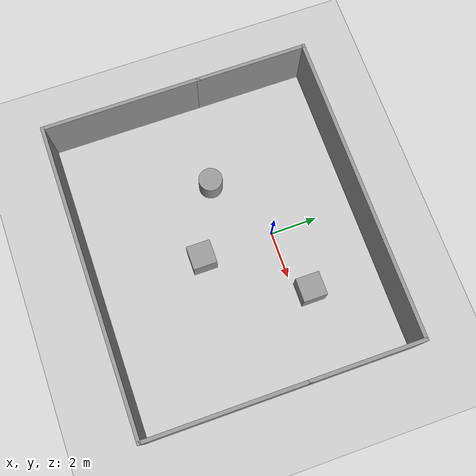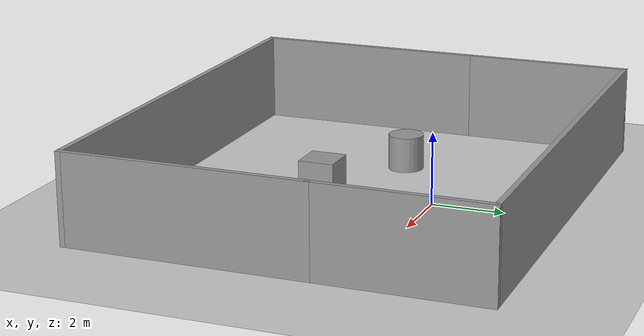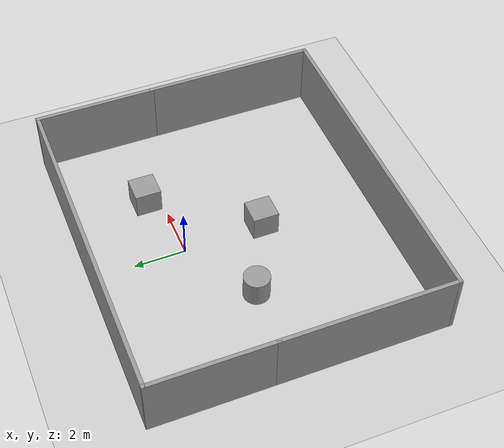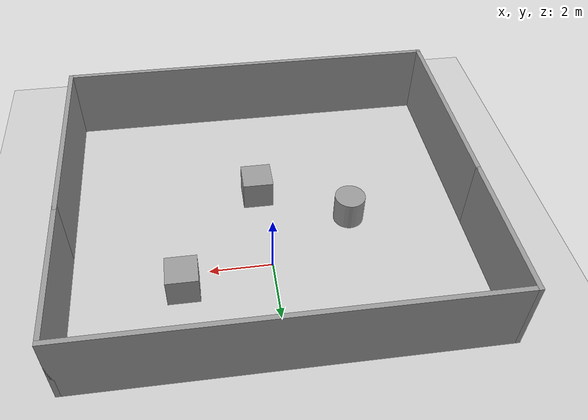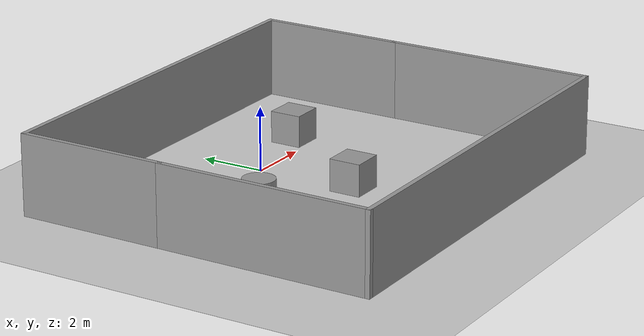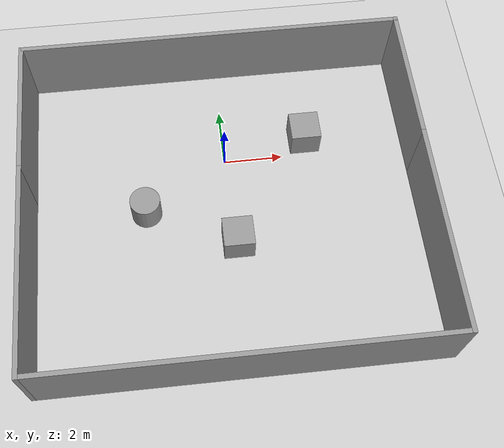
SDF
<sdf version="1.6">
 <world name="default">
  <light name="sun" type="directional">
   <pose>0 0 10 0 -0 0</pose>
   <diffuse>0.8 0.8 0.8 1</diffuse>
   <specular>0.2 0.2 0.2 1</specular>
   <attenuation>
    <range>1000</range>
    <constant>0.9</constant>
    <linear>0.01</linear>
    <quadratic>0.001</quadratic>
   </attenuation>
   <direction>-0.5 0.1 -0.9</direction>
  </light>
  <model name="ground_plane">
   <static>1</static>
   <link name="link">
    <collision name="collision">
     <geometry><plane><normal>0 0 1</normal><size>100 100</size></plane></geometry>
     <surface>
      <contact><collide_bitmask>65535</collide_bitmask></contact>
      <friction><ode><mu>100</mu><mu2>50</mu2></ode></friction>
     </surface>
    </collision>
    <visual name="visual">
     <cast_shadows>0</cast_shadows>
     <geometry><plane><normal>0 0 1</normal><size>100 100</size></plane></geometry>
     <material>
      <script><uri>file://media/materials/scripts/gazebo.material</uri><name>Gazebo/Grey</name></script>
     </material>
    </visual>
   </link>
  </model>
  <gravity>0 0 -9.8</gravity>
  <magnetic_field>6e-06 2.3e-05 -4.2e-05</magnetic_field>
  <atmosphere type="adiabatic"/>
  <physics name="default_physics" default="0" type="ode">
   <max_step_size>0.001</max_step_size>
   <real_time_factor>1</real_time_factor>
   <real_time_update_rate>1000</real_time_update_rate>
  </physics>
  <scene><ambient>0.4 0.4 0.4 1</ambient><background>0.7 0.7 0.7 1</background><shadows>1</shadows></scene>
  <spherical_coordinates>
   <surface_model>EARTH_WGS84</surface_model>
   <latitude_deg>0</latitude_deg>
   <longitude_deg>0</longitude_deg>
   <elevation>0</elevation>
   <heading_deg>0</heading_deg>
  </spherical_coordinates>
  <model name="Untitled">
   <pose>-0.117726 -1.94324 0 0 -0 0</pose>
   <link name="Wall_11">
    <collision name="Wall_11_Collision">
     <geometry><box><size>6.75 0.15 2.5</size></box></geometry>
     <pose>0 0 1.25 0 -0 0</pose>
    </collision>
    <visual name="Wall_11_Visual">
     <pose>0 0 1.25 0 -0 0</pose>
     <geometry><box><size>6.75 0.15 2.5</size></box></geometry>
     <material>
      <script><uri>file://media/materials/scripts/gazebo.material</uri><name>Gazebo/Grey</name></script>
      <ambient>1 1 1 1</ambient>
     </material>
     <meta><layer>0</layer></meta>
    </visual>
    <pose>6.425 -2.3 0 0 -0 -1.5708</pose>
   </link>
   <link name="Wall_12">
    <collision name="Wall_12_Collision">
     <geometry><box><size>13 0.15 2.5</size></box></geometry>
     <pose>0 0 1.25 0 -0 0</pose>
    </collision>
    <visual name="Wall_12_Visual">
     <pose>0 0 1.25 0 -0 0</pose>
     <geometry><box><size>13 0.15 2.5</size></box></geometry>
     <material>
      <script><uri>file://media/materials/scripts/gazebo.material</uri><name>Gazebo/Grey</name></script>
      <ambient>1 1 1 1</ambient>
     </material>
     <meta><layer>0</layer></meta>
    </visual>
    <pose>0 -5.6 0 0 -0 3.14159</pose>
   </link>
   <link name="Wall_13">
    <collision name="Wall_13_Collision">
     <geometry><box><size>6.75 0.15 2.5</size></box></geometry>
     <pose>0 0 1.25 0 -0 0</pose>
    </collision>
    <visual name="Wall_13_Visual">
     <pose>0 0 1.25 0 -0 0</pose>
     <geometry><box><size>6.75 0.15 2.5</size></box></geometry>
     <material>
      <script><uri>file://media/materials/scripts/gazebo.material</uri><name>Gazebo/Grey</name></script>
      <ambient>1 1 1 1</ambient>
     </material>
     <meta><layer>0</layer></meta>
    </visual>
    <pose>-6.425 -2.3 0 0 -0 1.5708</pose>
   </link>
   <link name="Wall_15">
    <collision name="Wall_15_Collision">
     <geometry><box><size>4.75 0.15 2.5</size></box></geometry>
     <pose>0 0 1.25 0 -0 0</pose>
    </collision>
    <visual name="Wall_15_Visual">
     <pose>0 0 1.25 0 -0 0</pose>
     <geometry><box><size>4.75 0.15 2.5</size></box></geometry>
     <material>
      <script><uri>file://media/materials/scripts/gazebo.material</uri><name>Gazebo/Grey</name></script>
      <ambient>1 1 1 1</ambient>
     </material>
     <meta><layer>0</layer></meta>
    </visual>
    <pose>-6.425 3.3 0 0 -0 1.5708</pose>
   </link>
   <link name="Wall_16">
    <collision name="Wall_16_Collision">
     <geometry><box><size>13 0.15 2.5</size></box></geometry>
     <pose>0 0 1.25 0 -0 0</pose>
    </collision>
    <visual name="Wall_16_Visual">
     <pose>0 0 1.25 0 -0 0</pose>
     <geometry><box><size>13 0.15 2.5</size></box></geometry>
     <material>
      <script><uri>file://media/materials/scripts/gazebo.material</uri><name>Gazebo/Grey</name></script>
      <ambient>1 1 1 1</ambient>
     </material>
     <meta><layer>0</layer></meta>
    </visual>
    <pose>0 5.6 0 0 -0 0</pose>
   </link>
   <link name="Wall_17">
    <collision name="Wall_17_Collision">
     <geometry><box><size>4.75 0.15 2.5</size></box></geometry>
     <pose>0 0 1.25 0 -0 0</pose>
    </collision>
    <visual name="Wall_17_Visual">
     <pose>0 0 1.25 0 -0 0</pose>
     <geometry><box><size>4.75 0.15 2.5</size></box></geometry>
     <material>
      <script><uri>file://media/materials/scripts/gazebo.material</uri><name>Gazebo/Grey</name></script>
      <ambient>1 1 1 1</ambient>
     </material>
     <meta><layer>0</layer></meta>
    </visual>
    <pose>6.425 3.3 0 0 -0 -1.5708</pose>
   </link>
   <static>1</static>
  </model>
  <model name="unit_cylinder">
   <pose>-2.79409 -1.73072 0.499997 3e-06 4e-06 -0</pose>
   <link name="link">
    <inertial>
     <mass>1</mass>
     <inertia><ixx>0.145833</ixx><ixy>0</ixy><ixz>0</ixz><iyy>0.145833</iyy><iyz>0</iyz><izz>0.125</izz></inertia>
    </inertial>
    <collision name="collision">
     <geometry><cylinder><radius>0.5</radius><length>1</length></cylinder></geometry>
    </collision>
    <visual name="visual">
     <geometry><cylinder><radius>0.5</radius><length>1</length></cylinder></geometry>
     <material>
      <script><name>Gazebo/Grey</name><uri>file://media/materials/scripts/gazebo.material</uri></script>
     </material>
    </visual>
   </link>
  </model>
  <model name="unit_box">
   <pose>2.82275 0.607221 0.499995 -1e-05 -0 0</pose>
   <link name="link">
    <inertial>
     <mass>1</mass>
     <inertia>
      <ixx>0.166667</ixx>
      <ixy>0</ixy>
      <ixz>0</ixz>
      <iyy>0.166667</iyy>
      <iyz>0</iyz>
      <izz>0.166667</izz>
     </inertia>
    </inertial>
    <collision name="collision"><geometry><box><size>1 1 1</size></box></geometry></collision>
    <visual name="visual">
     <geometry><box><size>1 1 1</size></box></geometry>
     <material>
      <script><name>Gazebo/Grey</name><uri>file://media/materials/scripts/gazebo.material</uri></script>
     </material>
    </visual>
   </link>
  </model>
  <model name="unit_box_0">
   <pose>0.127857 -3.11403 0.5 0 -0 0</pose>
   <link name="link">
    <inertial>
     <mass>1</mass>
     <inertia>
      <ixx>0.166667</ixx>
      <ixy>0</ixy>
      <ixz>0</ixz>
      <iyy>0.166667</iyy>
      <iyz>0</iyz>
      <izz>0.166667</izz>
     </inertia>
    </inertial>
    <collision name="collision"><geometry><box><size>1 1 1</size></box></geometry></collision>
    <visual name="visual">
     <geometry><box><size>1 1 1</size></box></geometry>
     <material>
      <script><name>Gazebo/Grey</name><uri>file://media/materials/scripts/gazebo.material</uri></script>
     </material>
    </visual>
   </link>
  </model>
 </world>
</sdf>
